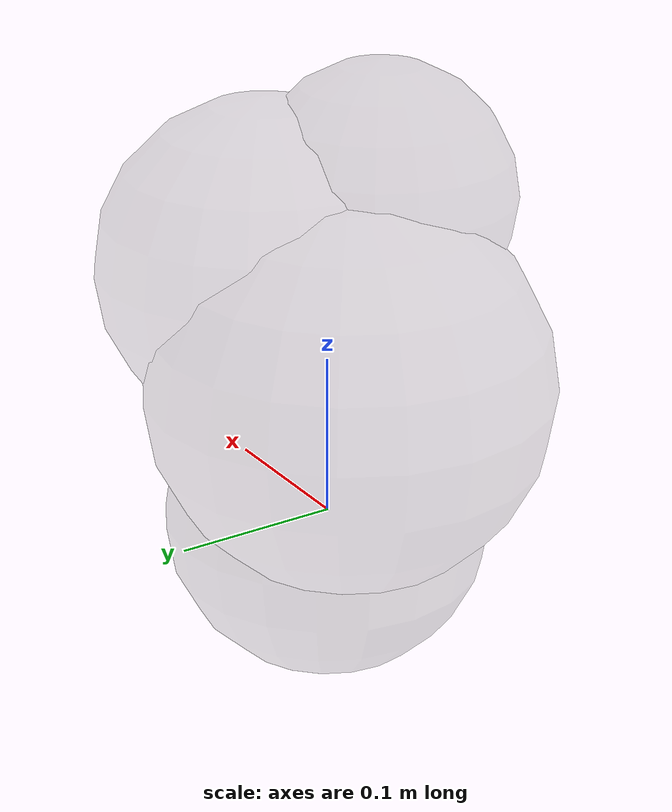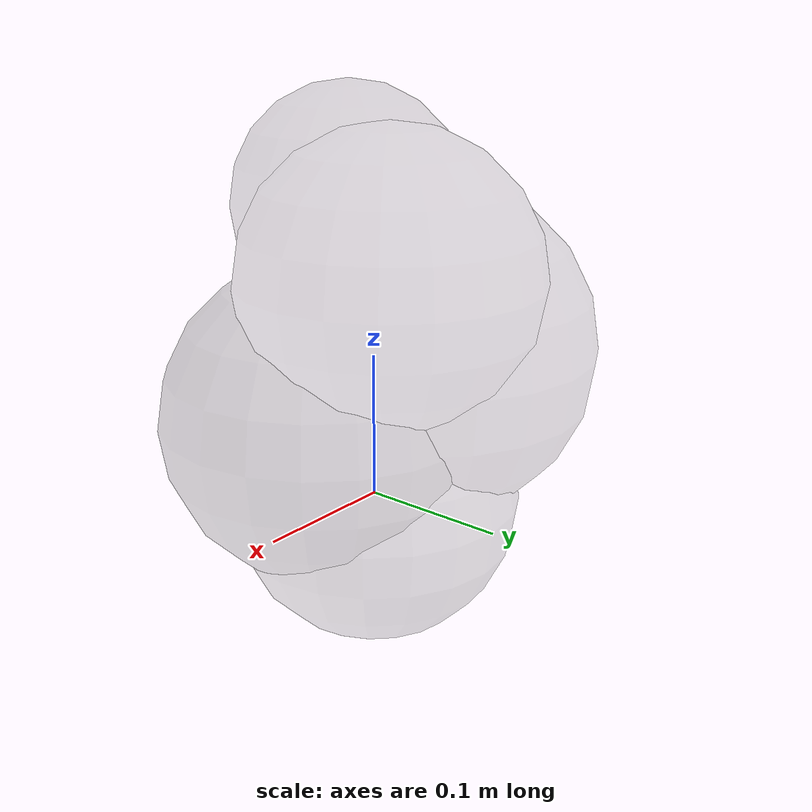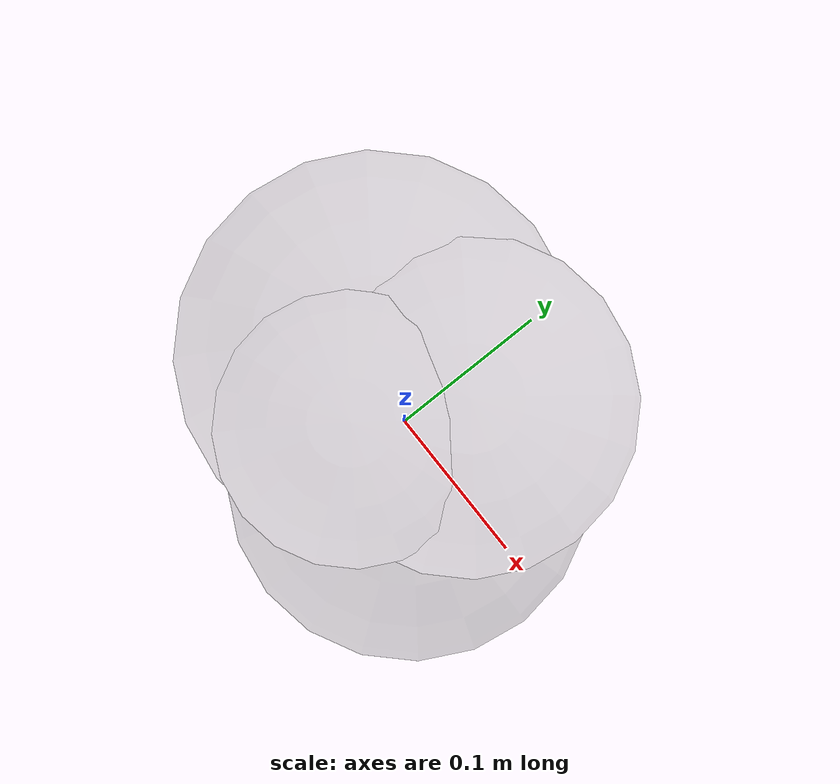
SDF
<?xml version="1.0" ?>
<sdf version="1.6">
  <model name="smoke_puff">
    <static>true</static>
    <link name="smoke_link">
      <!-- 연기 타원체 1 -->
      <visual name="smoke_v1">
        <pose>0 0 0 0 0 0</pose>
        <geometry>
          <sphere><radius>0.10</radius></sphere>
        </geometry>
        <scale>0.35 0.25 0.45</scale> <!-- 비구형(타원) -->
        <material>
          <ambient>0.4 0.4 0.4 1</ambient>
          <diffuse>0.45 0.45 0.45 0.25</diffuse> <!-- 연한 회색, 반투명 -->
          <transparency>0.6</transparency>
        </material>
        <cast_shadows>false</cast_shadows>
      </visual>

      <!-- 연기 타원체 2 -->
      <visual name="smoke_v2">
        <pose>0.03 -0.02 0.06 0 0 0</pose>
        <geometry>
          <sphere><radius>0.11</radius></sphere>
        </geometry>
        <scale>0.45 0.30 0.30</scale>
        <material>
          <ambient>0.35 0.35 0.35 1</ambient>
          <diffuse>0.4 0.4 0.4 0.28</diffuse>
          <transparency>0.65</transparency>
        </material>
        <cast_shadows>false</cast_shadows>
      </visual>

      <!-- 연기 타원체 3 -->
      <visual name="smoke_v3">
        <pose>-0.04 0.01 0.10 0 0 0</pose>
        <geometry>
          <sphere><radius>0.12</radius></sphere>
        </geometry>
        <scale>0.30 0.50 0.35</scale>
        <material>
          <ambient>0.3 0.3 0.3 1</ambient>
          <diffuse>0.35 0.35 0.35 0.22</diffuse>
          <transparency>0.7</transparency>
        </material>
        <cast_shadows>false</cast_shadows>
      </visual>

      <!-- 연기 타원체 4 -->
      <visual name="smoke_v4">
        <pose>0.02 0.03 0.16 0 0 0</pose>
        <geometry>
          <sphere><radius>0.10</radius></sphere>
        </geometry>
        <scale>0.25 0.35 0.40</scale>
        <material>
          <ambient>0.25 0.25 0.25 1</ambient>
          <diffuse>0.3 0.3 0.3 0.18</diffuse>
          <transparency>0.75</transparency>
        </material>
        <cast_shadows>false</cast_shadows>
      </visual>

      <!-- 연기 타원체 5 (상단 얇은 퍼짐) -->
      <visual name="smoke_v5">
        <pose>-0.01 -0.03 0.20 0 0 0</pose>
        <geometry>
          <sphere><radius>0.08</radius></sphere>
        </geometry>
        <scale>0.40 0.22 0.22</scale>
        <material>
          <ambient>0.2 0.2 0.2 1</ambient>
          <diffuse>0.25 0.25 0.25 0.15</diffuse>
          <transparency>0.8</transparency>
        </material>
        <cast_shadows>false</cast_shadows>
      </visual>
    </link>
  </model>
</sdf>
